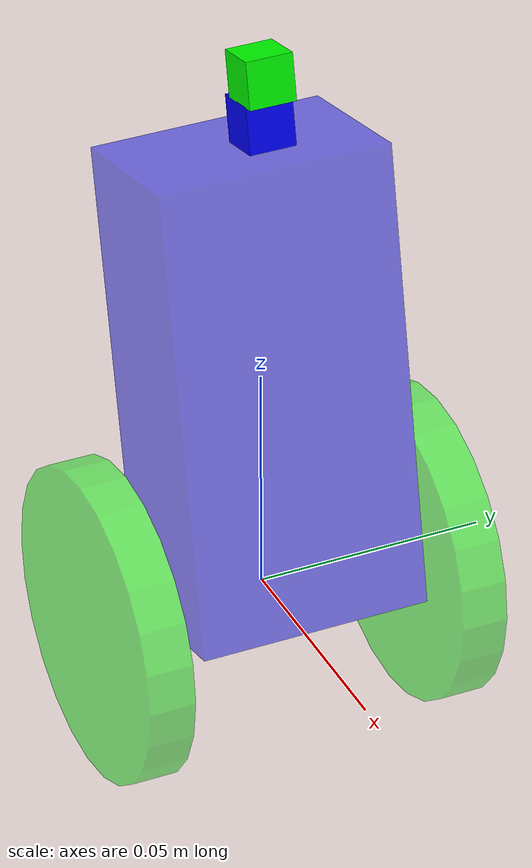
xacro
<?xml version="1.0"?>
<robot xmlns:xacro="http://www.ros.org/wiki/xacro" name="edumip_my_robot">

  <!-- Numerical Macros - units are meters and radians -->
  <xacro:property name="wheel_separation" value="0.070" />
  <xacro:property name="wheel_radius" value="0.034" />
  <xacro:property name="wheel_width"  value="0.010" />
  <xacro:property name="body_height"  value="0.1" />
  <xacro:property name="body_width"   value="0.050" />
  <xacro:property name="body_length"  value="0.035" />

<link name="edumip_body">
 <visual>
 <origin xyz="0 0 ${0.5*body_height}" rpy="0 -0.20 0"/>
 <geometry>
 <box size="${body_length} ${body_width} ${body_height}"/>
 </geometry>
 <material name="Blue">
 <color rgba="0 0.0 1.0 0.5"/>
 </material>
 </visual>

<collision>
 <origin xyz="0 0 ${0.5*body_height}" rpy="0 -0.20 0"/>
 <geometry>
 <box size="${body_length} ${body_width} ${body_height}"/>
 </geometry>
 </collision>

<inertial>
 <origin xyz="0 0 ${0.5*body_height}" rpy="0 0 0"/>
 <mass value="0.180"/>
 <inertia ixx="6.0e-4" ixy="0" ixz="0" iyy="6.0e-4" iyz="0" izz="6.0e-4"/>
 </inertial>

 </link>

<link name="wheelL">

<visual>
 <origin xyz="0 0 0" rpy="1.57079 0 0" />
 <geometry>
 <cylinder length="${wheel_width}" radius="${wheel_radius}"/>
 </geometry>
 <material name="Green">
 <color rgba="0.0 1.0 0.0 0.5"/>
 </material>
 </visual>

<collision>
 <origin xyz="0 0 0" rpy="1.57079 0 0" />
 <geometry>
 <cylinder length="${wheel_width}" radius="${wheel_radius}"/>
 </geometry>
 </collision>

<inertial>
 <origin xyz="0 0 0" rpy="0 0 0"/>
 <mass value="0.030"/>
 <inertia ixx="1.75e-5" ixy="0" ixz="0" iyy="1.75e-5" iyz="0" izz="1.75e-5"/>
 </inertial>

</link>

<link name="wheelR">

<visual>
 <origin xyz="0 0 0" rpy="1.57079 0 0" />
 <geometry>
 <cylinder length="${wheel_width}" radius="${wheel_radius}"/>
 </geometry>
 <material name="Green">
 <color rgba="0.0 1.0 0.0 0.5"/>
 </material>
 </visual>

<collision>
 <origin xyz="0 0 0" rpy="1.57079 0 0" />
 <geometry>
 <cylinder length="${wheel_width}" radius="${wheel_radius}"/>
 </geometry>
 </collision>

<inertial>
 <origin xyz="0 0 0" rpy="0 0 0"/>
 <mass value="0.030"/>
 <inertia ixx="1.75e-5" ixy="0" ixz="0" iyy="1.75e-5" iyz="0" izz="1.75e-5"/>
 </inertial>

</link>

  <link name="camera_link">
    <visual>
      <origin xyz="0 0 ${body_height + 0.01}" rpy="0 -0.20 0"/>
      <geometry>
        <box size="0.01 0.01 0.01"/>
      </geometry>
      <material name="blue">
        <color rgba="0 0.0 1.0 0.0"/>
      </material>
    </visual>

    <collision>
      <origin xyz="0 0 0" rpy="0 0 0"/>
      <geometry>
        <box size="0.01 0.01 0.01"/>
      </geometry>
    </collision>

    <inertial>
      <origin xyz="0 0 0" rpy="0 0 0"/>
      <mass value="0.0"/>
      <inertia ixx="0" ixy="0" ixz="0" iyy="0" iyz="0" izz="0"/>
    </inertial>
  </link>

  <link name="hokuyo_link">
    <visual>
      <origin xyz="0 0 ${body_height + 0.02}" rpy="0 -0.20 0"/>
      <geometry>
        <box size="0.01 0.01 0.01"/>
      </geometry>
      <material name="green">
        <color rgba="0 1.0 0.0 0.0"/>
      </material>
    </visual>

    <collision>
      <origin xyz="0 0 0" rpy="0 0 0"/>
      <geometry>
        <box size="0.01 0.01 0.01"/>
      </geometry>
    </collision>

    <inertial>
      <origin xyz="0 0 0" rpy="0 0 0"/>
      <mass value="0.0"/>
      <inertia ixx="0" ixy="0" ixz="0" iyy="0" iyz="0" izz="0"/>
    </inertial>
  </link>

  <joint name="jointL" type="continuous">
    <parent link="edumip_body"/>
    <child link="wheelL"/>
    <origin xyz="0.0 ${wheel_separation/2} 0.0" rpy="0 0 0" />
    <axis xyz="0 1 0" />
  </joint>

  <joint name="jointR" type="continuous">
    <parent link="edumip_body"/>
    <child link="wheelR"/>
    <origin xyz="0.0 ${-1*(wheel_separation/2)} 0.0" rpy="0 0 0" />
    <axis xyz="0 1 0" />
  </joint>

  <joint name="camera_joint" type="fixed">
   <parent link="edumip_body"/>
   <child link="camera_link"/>
   <origin xyz="0 0 0" rpy="0 0 0"/>
  </joint>

  <joint name="hokuyo_joint" type="fixed">
   <parent link="edumip_body"/>
   <child link="hokuyo_link"/>
   <origin xyz="0 0 0" rpy="0 0 0"/>
  </joint>

 <gazebo reference="edumip_body">
   <material>Gazebo/White</material>
   <mu1>0.2</mu1>
   <mu2>0.2</mu2>
 </gazebo>
 <gazebo reference="wheelR">
   <material>Gazebo/Red</material>
   <mu1>0.2</mu1>
   <mu2>0.2</mu2>
 </gazebo>
 <gazebo reference="wheelL">
   <material>Gazebo/Red</material>
   <mu1>0.2</mu1>
   <mu2>0.2</mu2>
 </gazebo>
 <gazebo reference="camera_link">
   <material>Gazebo/Blue</material>
 </gazebo>
 <gazebo reference="hokuyo_link">
   <material>Gazebo/Green</material>
 </gazebo>

 <gazebo>
  <plugin name="edumip_balance_ros_gazebo_plugin" filename="libedumip_balance_ros_gazebo_plugin.so">
  <rosDebugLevel>3</rosDebugLevel>
  <updateRate>100</updateRate>
  <robotBaseFrame>edumip_body</robotBaseFrame>
  <leftJoint>jointL</leftJoint>
  <rightJoint>jointR</rightJoint>
  <wheelSeparation>${wheel_separation}</wheelSeparation>
  <wheelDiameter>${wheel_radius*2.0}</wheelDiameter>
  <commandTopic>/edumip/cmd</commandTopic>
  <stateTopic>/edumip/state</stateTopic>
  </plugin>
 </gazebo>

 <gazebo reference="camera_link">
  <sensor type="camera" name="camera1">
    <update_rate>30.0</update_rate>
    <camera name="head">
      <horizontal_fov>1.3962634</horizontal_fov>
      <image>
        <width>800</width>
        <height>800</height>
        <format>R8G8B8</format>
      </image>
      <clip>
        <near>0.02</near>
        <far>300</far>
      </clip>
      <noise>
        <type>gaussian</type>
        <mean>0.0</mean>
        <stddev>0.007</stddev>
      </noise>
    </camera>
    <plugin name="camera_controller" filename="libgazebo_ros_camera.so">
      <robotNamespace>edumip</robotNamespace>
      <alwaysOn>true</alwaysOn>
      <updateRate>10.0</updateRate>
      <cameraName>camera1</cameraName>
      <imageTopicName>image_raw</imageTopicName>
      <cameraInfoTopicName>camera_info</cameraInfoTopicName>
      <frameName>camera_link</frameName>
      <hackBaseline>0.07</hackBaseline>
      <distortionK1>0.0</distortionK1>
      <distortionK2>0.0</distortionK2>
      <distortionK3>0.0</distortionK3>
      <distortionT1>0.0</distortionT1>
      <distortionT2>0.0</distortionT2>
    </plugin>
  </sensor>
 </gazebo>

  <!-- hokuyo -->
  <gazebo reference="hokuyo_link">
    <sensor type="gpu_ray" name="head_hokuyo_sensor">
      <pose>0 0 0 0 0 0</pose>
      <visualize>true</visualize>
      <update_rate>40</update_rate>
      <ray>
        <scan>
          <horizontal>
            <samples>720</samples>
            <resolution>1</resolution>
            <min_angle>-1.570796</min_angle>
            <max_angle>1.570796</max_angle>
          </horizontal>
        </scan>
        <range>
          <min>0.10</min>
          <max>30.0</max>
          <resolution>0.01</resolution>
        </range>
        <noise>
          <type>gaussian</type>
          <mean>0.0</mean>
          <stddev>0.01</stddev>
        </noise>
      </ray>
      <plugin name="gazebo_ros_head_hokuyo_controller" filename="libgazebo_ros_gpu_laser.so">
        <topicName>/rrbot/laser/scan</topicName>
        <frameName>hokuyo_link</frameName>
      </plugin>
    </sensor>
  </gazebo>

</robot>
